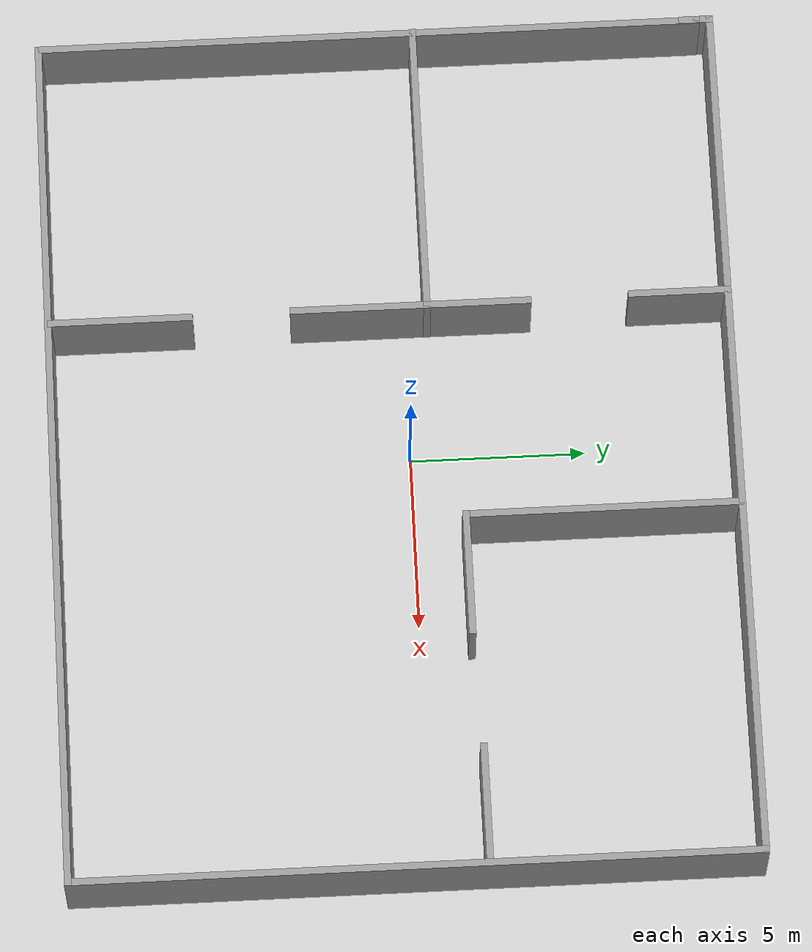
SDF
<sdf version="1.4">
 <world name="default">
  <model name="ground_plane">
   <static>1</static>
   <link name="link">
    <collision name="collision">
     <geometry><plane><normal>0 0 1</normal><size>100 100</size></plane></geometry>
     <surface><friction><ode><mu>100</mu><mu2>50</mu2></ode></friction></surface>
    </collision>
    <visual name="visual">
     <cast_shadows>0</cast_shadows>
     <geometry><plane><normal>0 0 1</normal><size>100 100</size></plane></geometry>
     <material>
      <script><uri>file://media/materials/scripts/gazebo.material</uri><name>Gazebo/Grey</name></script>
     </material>
    </visual>
    <velocity_decay><linear>0</linear><angular>0</angular></velocity_decay>
   </link>
  </model>
  <light name="sun" type="directional">
   <pose>0 0 10 0 -0 0</pose>
   <diffuse>0.8 0.8 0.8 1</diffuse>
   <specular>0.2 0.2 0.2 1</specular>
   <attenuation>
    <range>1000</range>
    <constant>0.9</constant>
    <linear>0.01</linear>
    <quadratic>0.001</quadratic>
   </attenuation>
   <direction>-0.5 0.1 -0.9</direction>
  </light>
  <model name="simpleBuilding">
   <pose>15.6701 0 0 0 -0 0</pose>
   <link name="Wall_1">
    <collision name="Wall_1_Collision">
     <geometry><box><size>19.2469 0.2 2.5</size></box></geometry>
     <pose>0 0 1.25 0 -0 0</pose>
    </collision>
    <visual name="Wall_1_Visual">
     <pose>0 0 1.25 0 -0 0</pose>
     <geometry><box><size>19.2469 0.2 2.5</size></box></geometry>
     <material>
      <script><uri>file://media/materials/scripts/gazebo.material</uri><name>Gazebo/Grey</name></script>
     </material>
    </visual>
    <velocity_decay><linear>0</linear><angular>0</angular></velocity_decay>
    <pose>-27.8925 -0.645556 0 0 0 -1.5708</pose>
   </link>
   <link name="Wall_10">
    <collision name="Wall_10_Collision">
     <geometry><box><size>3.08448 0.2 2.5</size></box></geometry>
     <pose>0 0 1.25 0 -0 0</pose>
    </collision>
    <visual name="Wall_10_Visual">
     <pose>0 0 1.25 0 -0 0</pose>
     <geometry><box><size>3.08448 0.2 2.5</size></box></geometry>
     <material>
      <script><uri>file://media/materials/scripts/gazebo.material</uri><name>Gazebo/Grey</name></script>
     </material>
    </visual>
    <velocity_decay><linear>0</linear><angular>0</angular></velocity_decay>
    <pose>-19.5352 2.09537 0 0 0 -1.5708</pose>
   </link>
   <link name="Wall_11">
    <collision name="Wall_11_Collision">
     <geometry><box><size>8.57431 0.2 2.5</size></box></geometry>
     <pose>0 0 1.25 0 -0 0</pose>
    </collision>
    <visual name="Wall_11_Visual">
     <pose>0 0 1.25 0 -0 0</pose>
     <geometry><box><size>8.57431 0.2 2.5</size></box></geometry>
     <material>
      <script><uri>file://media/materials/scripts/gazebo.material</uri><name>Gazebo/Grey</name></script>
     </material>
    </visual>
    <velocity_decay><linear>0</linear><angular>0</angular></velocity_decay>
    <pose>-23.7223 0.653132 0 0 -0 3.14159</pose>
   </link>
   <link name="Wall_13">
    <collision name="Wall_13_Collision">
     <geometry><box><size>3.96844 0.2 2.5</size></box></geometry>
     <pose>0 0 1.25 0 -0 0</pose>
    </collision>
    <visual name="Wall_13_Visual">
     <pose>0 0 1.25 0 -0 0</pose>
     <geometry><box><size>3.96844 0.2 2.5</size></box></geometry>
     <material>
      <script><uri>file://media/materials/scripts/gazebo.material</uri><name>Gazebo/Grey</name></script>
     </material>
    </visual>
    <velocity_decay><linear>0</linear><angular>0</angular></velocity_decay>
    <pose>-19.5352 -1.27761 0 0 0 -1.5708</pose>
   </link>
   <link name="Wall_15">
    <collision name="Wall_15_Collision">
     <geometry><box><size>4.15453 0.2 2.5</size></box></geometry>
     <pose>0 0 1.25 0 -0 0</pose>
    </collision>
    <visual name="Wall_15_Visual">
     <pose>0 0 1.25 0 -0 0</pose>
     <geometry><box><size>4.15453 0.2 2.5</size></box></geometry>
     <material>
      <script><uri>file://media/materials/scripts/gazebo.material</uri><name>Gazebo/Grey</name></script>
     </material>
    </visual>
    <velocity_decay><linear>0</linear><angular>0</angular></velocity_decay>
    <pose>-19.4887 -8.11663 0 0 0 -1.5708</pose>
   </link>
   <link name="Wall_17">
    <collision name="Wall_17_Collision">
     <geometry><box><size>7.96949 0.2 2.5</size></box></geometry>
     <pose>0 0 1.25 0 -0 0</pose>
    </collision>
    <visual name="Wall_17_Visual">
     <pose>0 0 1.25 0 -0 0</pose>
     <geometry><box><size>7.96949 0.2 2.5</size></box></geometry>
     <material>
      <script><uri>file://media/materials/scripts/gazebo.material</uri><name>Gazebo/Grey</name></script>
     </material>
    </visual>
    <velocity_decay><linear>0</linear><angular>0</angular></velocity_decay>
    <pose>-13.2079 5.32879 0 0 0 -1.5708</pose>
   </link>
   <link name="Wall_18">
    <collision name="Wall_18_Collision">
     <geometry><box><size>3.64277 0.2 2.5</size></box></geometry>
     <pose>0 0 1.25 0 -0 0</pose>
    </collision>
    <visual name="Wall_18_Visual">
     <pose>0 0 1.25 0 -0 0</pose>
     <geometry><box><size>3.64277 0.2 2.5</size></box></geometry>
     <material>
      <script><uri>file://media/materials/scripts/gazebo.material</uri><name>Gazebo/Grey</name></script>
     </material>
    </visual>
    <velocity_decay><linear>0</linear><angular>0</angular></velocity_decay>
    <pose>-11.4865 1.44404 0 0 -0 0</pose>
   </link>
   <link name="Wall_2">
    <collision name="Wall_2_Collision">
     <geometry><box><size>25.0787 0.2 2.5</size></box></geometry>
     <pose>0 0 1.25 0 -0 0</pose>
    </collision>
    <visual name="Wall_2_Visual">
     <pose>0 0 1.25 0 -0 0</pose>
     <geometry><box><size>25.0787 0.2 2.5</size></box></geometry>
     <material>
      <script><uri>file://media/materials/scripts/gazebo.material</uri><name>Gazebo/Grey</name></script>
     </material>
    </visual>
    <velocity_decay><linear>0</linear><angular>0</angular></velocity_decay>
    <pose>-15.4532 -10.169 0 0 -0 0</pose>
   </link>
   <link name="Wall_21">
    <collision name="Wall_21_Collision">
     <geometry><box><size>3.54972 0.2 2.5</size></box></geometry>
     <pose>0 0 1.25 0 -0 0</pose>
    </collision>
    <visual name="Wall_21_Visual">
     <pose>0 0 1.25 0 -0 0</pose>
     <geometry><box><size>3.54972 0.2 2.5</size></box></geometry>
     <material>
      <script><uri>file://media/materials/scripts/gazebo.material</uri><name>Gazebo/Grey</name></script>
     </material>
    </visual>
    <velocity_decay><linear>0</linear><angular>0</angular></velocity_decay>
    <pose>-4.69405 1.58361 0 0 -0 0</pose>
   </link>
   <link name="Wall_3">
    <collision name="Wall_3_Collision">
     <geometry><box><size>19.6291 0.2 2.5</size></box></geometry>
     <pose>0 0 1.25 0 -0 0</pose>
    </collision>
    <visual name="Wall_3_Visual">
     <pose>0 0 1.25 0 -0 0</pose>
     <geometry><box><size>19.6291 0.2 2.5</size></box></geometry>
     <material>
      <script><uri>file://media/materials/scripts/gazebo.material</uri><name>Gazebo/Grey</name></script>
     </material>
    </visual>
    <velocity_decay><linear>0</linear><angular>0</angular></velocity_decay>
    <pose>-3.01385 -0.454473 0 0 -0 1.5708</pose>
   </link>
   <link name="Wall_4">
    <collision name="Wall_4_Collision">
     <geometry><box><size>25.0956 0.2 2.5</size></box></geometry>
     <pose>0 0 1.25 0 -0 0</pose>
    </collision>
    <visual name="Wall_4_Visual">
     <pose>0 0 1.25 0 -0 0</pose>
     <geometry><box><size>25.0956 0.2 2.5</size></box></geometry>
     <material>
      <script><uri>file://media/materials/scripts/gazebo.material</uri><name>Gazebo/Grey</name></script>
     </material>
    </visual>
    <velocity_decay><linear>0</linear><angular>0</angular></velocity_decay>
    <pose>-15.4617 9.26006 0 0 -0 3.14159</pose>
   </link>
   <link name="Wall_5">
    <collision name="Wall_5_Collision">
     <geometry><box><size>0.990907 0.2 2.5</size></box></geometry>
     <pose>0 0 1.25 0 -0 0</pose>
    </collision>
    <visual name="Wall_5_Visual">
     <pose>0 0 1.25 0 -0 0</pose>
     <geometry><box><size>0.990907 0.2 2.5</size></box></geometry>
     <material>
      <script><uri>file://media/materials/scripts/gazebo.material</uri><name>Gazebo/Grey</name></script>
     </material>
    </visual>
    <velocity_decay><linear>0</linear><angular>0</angular></velocity_decay>
    <pose>-27.9095 8.8646 0 0 0 -1.5708</pose>
   </link>
   <link name="Wall_7">
    <collision name="Wall_7_Collision">
     <geometry><box><size>2.94491 0.2 2.5</size></box></geometry>
     <pose>0 0 1.25 0 -0 0</pose>
    </collision>
    <visual name="Wall_7_Visual">
     <pose>0 0 1.25 0 -0 0</pose>
     <geometry><box><size>2.94491 0.2 2.5</size></box></geometry>
     <material>
      <script><uri>file://media/materials/scripts/gazebo.material</uri><name>Gazebo/Grey</name></script>
     </material>
    </visual>
    <velocity_decay><linear>0</linear><angular>0</angular></velocity_decay>
    <pose>-19.5817 7.8876 0 0 0 -1.5708</pose>
   </link>
   <static>1</static>
  </model>
  <physics type="ode">
   <max_step_size>0.001</max_step_size>
   <real_time_factor>1</real_time_factor>
   <real_time_update_rate>1000</real_time_update_rate>
   <gravity>0 0 -9.8</gravity>
  </physics>
  <scene><ambient>0.4 0.4 0.4 1</ambient><background>0.7 0.7 0.7 1</background><shadows>1</shadows></scene>
  <spherical_coordinates>
   <surface_model>EARTH_WGS84</surface_model>
   <latitude_deg>0</latitude_deg>
   <longitude_deg>0</longitude_deg>
   <elevation>0</elevation>
   <heading_deg>0</heading_deg>
  </spherical_coordinates>
 </world>
</sdf>
